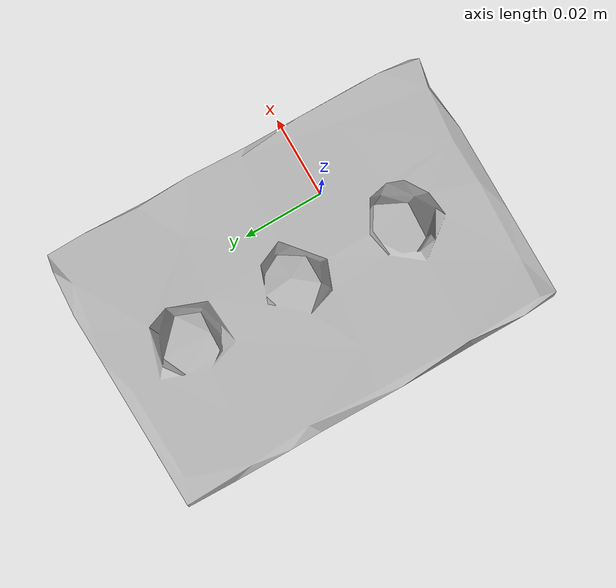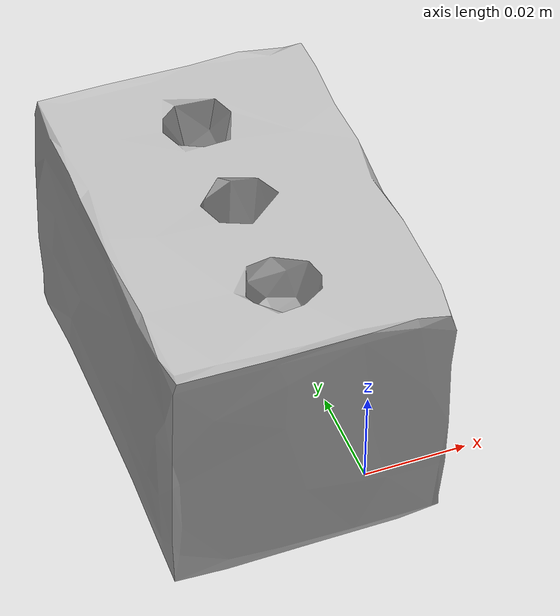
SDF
<?xml version="1.0"?>
<sdf version="1.6">
    <model name="foam">
        <pose>0 0 0.01 0 0 0</pose>
        <link name="link_00">
            <pose>0.0 0 0 0 0 0</pose>
            <visual name="visual_00">
                <geometry>
                    <mesh>
                        <uri>model://foam/textured.dae</uri>
                    </mesh>
                </geometry>
            </visual>
            <collision name="collision">
                <geometry>
                    <mesh>
                        <uri>model://foam/collision.dae</uri>
                    </mesh>
                </geometry>
                <surface>
                    <friction>
                        <ode>
                            <mu>100</mu>
                            <mu2>50</mu2>
                            <fdir1>0.0 0.0 0.0</fdir1>
                            <slip1>0.0</slip1>
                            <slip2>0.0</slip2>
                        </ode>
                    </friction>
                    <contact>
                        <ode>
                            <max_vel>0.1</max_vel>
                            <min_depth>0.001</min_depth>
                        </ode>
                    </contact>
                </surface>
                <max_contacts>4</max_contacts>
            </collision>
            <inertial>
                <pose> -0.019 0.017 0.025 0 0 0</pose>
                <inertia>
                    <ixx>9.999999999999999e-04</ixx>
                    <ixy>0.0</ixy>
                    <ixz>0.0</ixz>
                    <iyy>9.999999999999999e-04</iyy>
                    <iyz>-0.0</iyz>
                    <izz>9.999999999999999e-04</izz>
                </inertia>
            </inertial>
        </link>
    </model>
</sdf>
